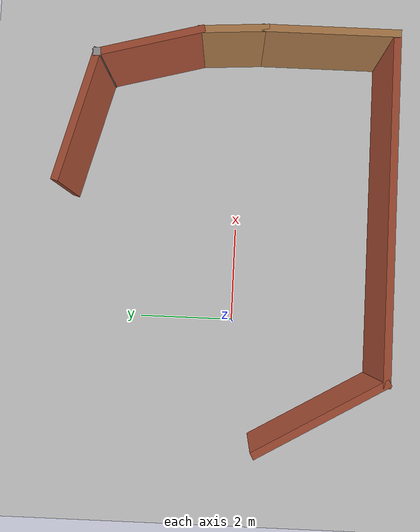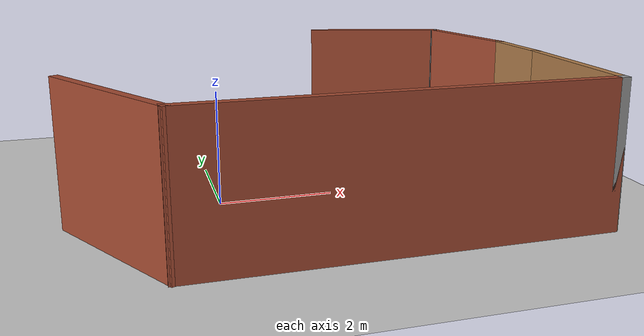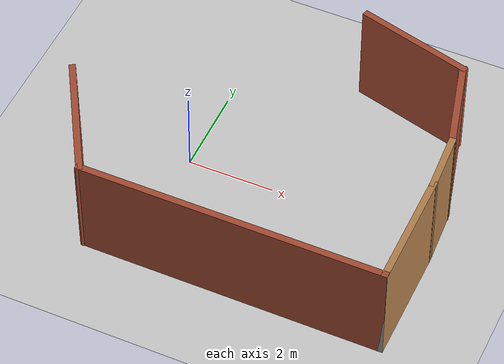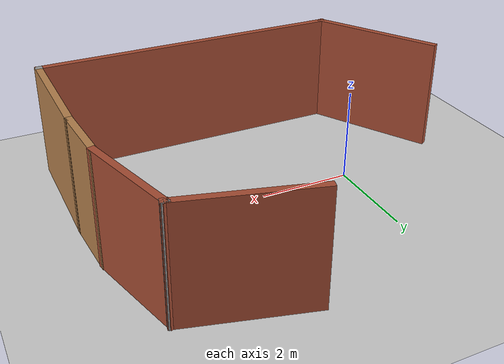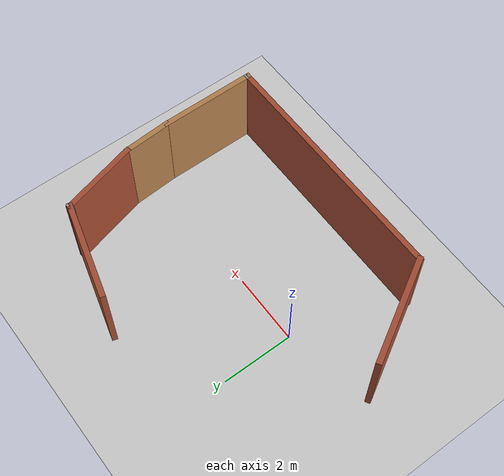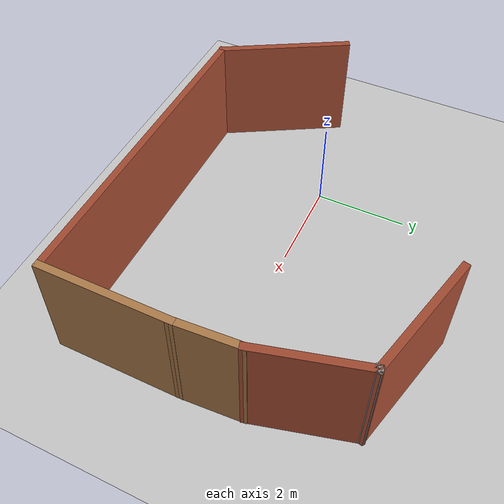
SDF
<sdf version="1.7">
 <world name="default">
  <light name="sun" type="directional">
   <pose>0 0 10 0 -0 0</pose>
   <diffuse>0.8 0.8 0.8 1</diffuse>
   <specular>0.2 0.2 0.2 1</specular>
   <attenuation>
    <range>1000</range>
    <constant>0.9</constant>
    <linear>0.01</linear>
    <quadratic>0.001</quadratic>
   </attenuation>
   <direction>-0.5 0.1 -0.9</direction>
   <spot><inner_angle>0</inner_angle><outer_angle>0</outer_angle><falloff>0</falloff></spot>
  </light>
  <model name="ground_plane">
   <static>1</static>
   <link name="link">
    <collision name="collision">
     <geometry><plane><normal>0 0 1</normal><size>100 100</size></plane></geometry>
     <surface>
      <contact><collide_bitmask>65535</collide_bitmask></contact>
      <friction><ode><mu>100</mu><mu2>50</mu2></ode></friction>
     </surface>
    </collision>
    <visual name="visual">
     <cast_shadows>0</cast_shadows>
     <geometry><plane><normal>0 0 1</normal><size>100 100</size></plane></geometry>
     <material>
      <script><uri>file://media/materials/scripts/gazebo.material</uri><name>Gazebo/Grey</name></script>
     </material>
    </visual>
   </link>
  </model>
  <gravity>0 0 -9.8</gravity>
  <magnetic_field>6e-06 2.3e-05 -4.2e-05</magnetic_field>
  <atmosphere type="adiabatic"/>
  <physics type="ode">
   <max_step_size>0.001</max_step_size>
   <real_time_factor>1</real_time_factor>
   <real_time_update_rate>1000</real_time_update_rate>
  </physics>
  <scene><ambient>0.4 0.4 0.4 1</ambient><background>0.7 0.7 0.7 1</background><shadows>1</shadows></scene>
  <audio><device>default</device></audio>
  <spherical_coordinates>
   <surface_model>EARTH_WGS84</surface_model>
   <latitude_deg>0</latitude_deg>
   <longitude_deg>0</longitude_deg>
   <elevation>0</elevation>
   <heading_deg>0</heading_deg>
  </spherical_coordinates>
  <model name="my_building">
   <pose>1.64109 0.272568 0 0 -0 0</pose>
   <link name="Wall_0">
    <collision name="Wall_0_Collision">
     <geometry><box><size>3 0.15 2.5</size></box></geometry>
     <pose>0 0 1.25 0 -0 0</pose>
    </collision>
    <visual name="Wall_0_Visual">
     <pose>0 0 1.25 0 -0 0</pose>
     <geometry><box><size>3 0.15 2.5</size></box></geometry>
     <material>
      <script><uri>file://media/materials/scripts/gazebo.material</uri><name>Gazebo/Bricks</name></script>
      <ambient>1 1 1 1</ambient>
     </material>
     <meta><layer>0</layer></meta>
    </visual>
    <pose>-3.41859 -2.04665 0 0 -0 -1.0472</pose>
   </link>
   <link name="Wall_1">
    <collision name="Wall_1_Collision">
     <geometry><box><size>7 0.15 2.5</size></box></geometry>
     <pose>0 0 1.25 0 -0 0</pose>
    </collision>
    <visual name="Wall_1_Visual">
     <pose>0 0 1.25 0 -0 0</pose>
     <geometry><box><size>7 0.15 2.5</size></box></geometry>
     <material>
      <script><uri>file://media/materials/scripts/gazebo.material</uri><name>Gazebo/Bricks</name></script>
      <ambient>1 1 1 1</ambient>
     </material>
     <meta><layer>0</layer></meta>
    </visual>
    <pose>0.718908 -3.28074 0 0 -0 0</pose>
   </link>
   <link name="Wall_2">
    <collision name="Wall_2_Collision">
     <geometry><box><size>0.16 0.15 2.5</size></box></geometry>
     <pose>0 0 1.25 0 -0 0</pose>
    </collision>
    <visual name="Wall_2_Visual">
     <pose>0 0 1.25 0 -0 0</pose>
     <geometry><box><size>0.16 0.15 2.5</size></box></geometry>
     <material>
      <script><uri>file://media/materials/scripts/gazebo.material</uri><name>Gazebo/Grey</name></script>
      <ambient>1 1 1 1</ambient>
     </material>
     <meta><layer>0</layer></meta>
    </visual>
    <pose>4.14891 -3.28074 0 0 -0 0</pose>
   </link>
   <link name="Wall_3">
    <collision name="Wall_3_Collision">
     <geometry><box><size>2.75 0.15 2.5</size></box></geometry>
     <pose>0 0 1.25 0 -0 0</pose>
    </collision>
    <visual name="Wall_3_Visual">
     <pose>0 0 1.25 0 -0 0</pose>
     <geometry><box><size>2.75 0.15 2.5</size></box></geometry>
     <material>
      <script><uri>file://media/materials/scripts/gazebo.material</uri><name>Gazebo/Wood</name></script>
      <ambient>1 1 1 1</ambient>
     </material>
     <meta><layer>0</layer></meta>
    </visual>
    <pose>4.15391 -1.98074 0 0 -0 1.5708</pose>
   </link>
   <link name="Wall_5">
    <collision name="Wall_5_Collision">
     <geometry><box><size>1.4233 0.15 2.5</size></box></geometry>
     <pose>0 0 1.25 0 -0 0</pose>
    </collision>
    <visual name="Wall_5_Visual">
     <pose>0 0 1.25 0 -0 0</pose>
     <geometry><box><size>1.4233 0.15 2.5</size></box></geometry>
     <material>
      <script><uri>file://media/materials/scripts/gazebo.material</uri><name>Gazebo/Wood</name></script>
      <ambient>1 1 1 1</ambient>
     </material>
     <meta><layer>0</layer></meta>
    </visual>
    <pose>4.11326 -0.045389 0 0 -0 -1.5069</pose>
   </link>
   <link name="Wall_7">
    <collision name="Wall_7_Collision">
     <geometry><box><size>2.25 0.15 2.5</size></box></geometry>
     <pose>0 0 1.25 0 -0 0</pose>
    </collision>
    <visual name="Wall_7_Visual">
     <pose>0 0 1.25 0 -0 0</pose>
     <geometry><box><size>2.25 0.15 2.5</size></box></geometry>
     <material>
      <script><uri>file://media/materials/scripts/gazebo.material</uri><name>Gazebo/Bricks</name></script>
      <ambient>1 1 1 1</ambient>
     </material>
     <meta><layer>0</layer></meta>
    </visual>
    <pose>3.80084 1.60418 0 0 -0 1.8326</pose>
   </link>
   <link name="Wall_8">
    <collision name="Wall_8_Collision">
     <geometry><box><size>0.16 0.15 2.5</size></box></geometry>
     <pose>0 0 1.25 0 -0 0</pose>
    </collision>
    <visual name="Wall_8_Visual">
     <pose>0 0 1.25 0 -0 0</pose>
     <geometry><box><size>0.16 0.15 2.5</size></box></geometry>
     <material>
      <script><uri>file://media/materials/scripts/gazebo.material</uri><name>Gazebo/Grey</name></script>
      <ambient>1 1 1 1</ambient>
     </material>
     <meta><layer>0</layer></meta>
    </visual>
    <pose>3.53409 2.61841 0 0 -0 0</pose>
   </link>
   <link name="Wall_9">
    <collision name="Wall_9_Collision">
     <geometry><box><size>2.75 0.15 2.5</size></box></geometry>
     <pose>0 0 1.25 0 -0 0</pose>
    </collision>
    <visual name="Wall_9_Visual">
     <pose>0 0 1.25 0 -0 0</pose>
     <geometry><box><size>2.75 0.15 2.5</size></box></geometry>
     <material>
      <script><uri>file://media/materials/scripts/gazebo.material</uri><name>Gazebo/Bricks</name></script>
      <ambient>1 1 1 1</ambient>
     </material>
     <meta><layer>0</layer></meta>
    </visual>
    <pose>2.28338 2.95487 0 0 -0 2.87979</pose>
   </link>
   <static>1</static>
  </model>
 </world>
</sdf>
